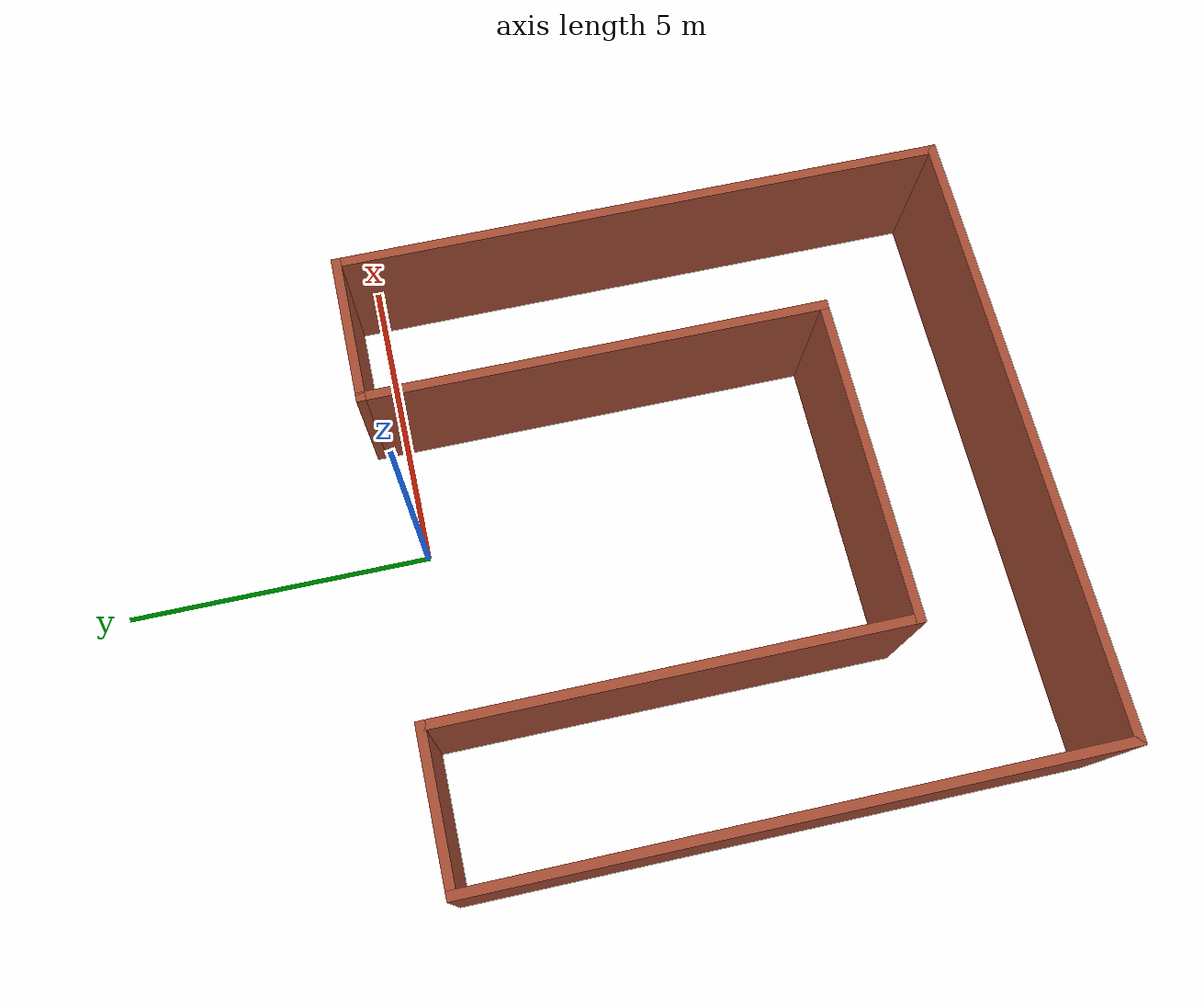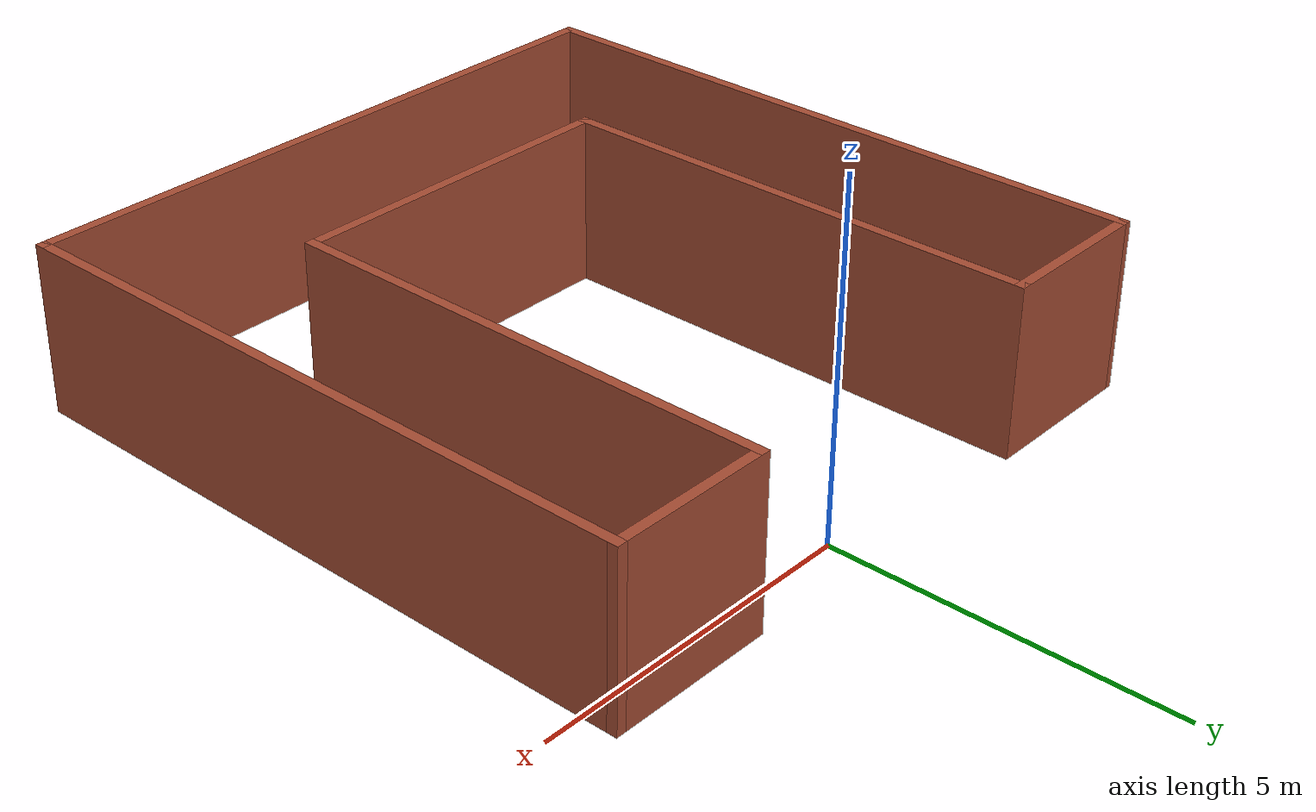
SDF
<?xml version='1.0'?>
<sdf version='1.6'>
  <model name='UWorld_SG_Editor'>
    <pose frame=''>-0.575 -4.46678 0 0 -0 0</pose>
    <link name='Wall_0'>
      <collision name='Wall_0_Collision'>
        <geometry>
          <box>
            <size>2.5 0.15 2.5</size>
          </box>
        </geometry>
        <pose frame=''>0 0 1.25 0 -0 0</pose>
      </collision>
      <visual name='Wall_0_Visual'>
        <pose frame=''>0 0 1.25 0 -0 0</pose>
        <geometry>
          <box>
            <size>2.5 0.15 2.5</size>
          </box>
        </geometry>
        <material>
          <script>
            <uri>file://media/materials/scripts/gazebo.material</uri>
            <name>Gazebo/Bricks</name>
          </script>
          <ambient>1 0.764706 0.305882 1</ambient>
        </material>
        <meta>
          <layer>0</layer>
        </meta>
      </visual>
      <pose frame=''>-3.74979 4.92499 0 0 -0 0.000182</pose>
    </link>
    <link name='Wall_11'>
      <collision name='Wall_11_Collision'>
        <geometry>
          <box>
            <size>7.5 0.15 2.5</size>
          </box>
        </geometry>
        <pose frame=''>0 0 1.25 0 -0 0</pose>
      </collision>
      <visual name='Wall_11_Visual'>
        <pose frame=''>0 0 1.25 0 -0 0</pose>
        <geometry>
          <box>
            <size>7.5 0.15 2.5</size>
          </box>
        </geometry>
        <material>
          <script>
            <uri>file://media/materials/scripts/gazebo.material</uri>
            <name>Gazebo/Bricks</name>
          </script>
          <ambient>1 0.764706 0.305882 1</ambient>
        </material>
        <meta>
          <layer>0</layer>
        </meta>
      </visual>
      <pose frame=''>-2.57479 1.24999 0 0 0 -1.57085</pose>
    </link>
    <link name='Wall_13'>
      <collision name='Wall_13_Collision'>
        <geometry>
          <box>
            <size>10 0.15 2.5</size>
          </box>
        </geometry>
        <pose frame=''>0 0 1.25 0 -0 0</pose>
      </collision>
      <visual name='Wall_13_Visual'>
        <pose frame=''>0 0 1.25 0 -0 0</pose>
        <geometry>
          <box>
            <size>10 0.15 2.5</size>
          </box>
        </geometry>
        <material>
          <script>
            <uri>file://media/materials/scripts/gazebo.material</uri>
            <name>Gazebo/Bricks</name>
          </script>
          <ambient>1 0.764706 0.305882 1</ambient>
        </material>
        <meta>
          <layer>0</layer>
        </meta>
      </visual>
      <pose frame=''>0 -4.92522 0 0 -0 0</pose>
    </link>
    <link name='Wall_15'>
      <collision name='Wall_15_Collision'>
        <geometry>
          <box>
            <size>10 0.15 2.5</size>
          </box>
        </geometry>
        <pose frame=''>0 0 1.25 0 -0 0</pose>
      </collision>
      <visual name='Wall_15_Visual'>
        <pose frame=''>0 0 1.25 0 -0 0</pose>
        <geometry>
          <box>
            <size>10 0.15 2.5</size>
          </box>
        </geometry>
        <material>
          <script>
            <uri>file://media/materials/scripts/gazebo.material</uri>
            <name>Gazebo/Bricks</name>
          </script>
          <ambient>1 0.764706 0.305882 1</ambient>
        </material>
        <meta>
          <layer>0</layer>
        </meta>
      </visual>
      <pose frame=''>4.925 -0.00022 0 0 -0 1.5708</pose>
    </link>
    <link name='Wall_17'>
      <collision name='Wall_17_Collision'>
        <geometry>
          <box>
            <size>2.5 0.15 2.5</size>
          </box>
        </geometry>
        <pose frame=''>0 0 1.25 0 -0 0</pose>
      </collision>
      <visual name='Wall_17_Visual'>
        <pose frame=''>0 0 1.25 0 -0 0</pose>
        <geometry>
          <box>
            <size>2.5 0.15 2.5</size>
          </box>
        </geometry>
        <material>
          <script>
            <uri>file://media/materials/scripts/gazebo.material</uri>
            <name>Gazebo/Bricks</name>
          </script>
          <ambient>1 0.764706 0.305882 1</ambient>
        </material>
        <meta>
          <layer>0</layer>
        </meta>
      </visual>
      <pose frame=''>3.75 4.92478 0 0 -0 3.14159</pose>
    </link>
    <link name='Wall_19'>
      <collision name='Wall_19_Collision'>
        <geometry>
          <box>
            <size>7.5 0.15 2.5</size>
          </box>
        </geometry>
        <pose frame=''>0 0 1.25 0 -0 0</pose>
      </collision>
      <visual name='Wall_19_Visual'>
        <pose frame=''>0 0 1.25 0 -0 0</pose>
        <geometry>
          <box>
            <size>7.5 0.15 2.5</size>
          </box>
        </geometry>
        <material>
          <script>
            <uri>file://media/materials/scripts/gazebo.material</uri>
            <name>Gazebo/Bricks</name>
          </script>
          <ambient>1 0.764706 0.305882 1</ambient>
        </material>
        <meta>
          <layer>0</layer>
        </meta>
      </visual>
      <pose frame=''>2.575 1.24978 0 0 0 -1.5708</pose>
    </link>
    <link name='Wall_21'>
      <collision name='Wall_21_Collision'>
        <geometry>
          <box>
            <size>5.29957 0.15 2.5</size>
          </box>
        </geometry>
        <pose frame=''>0 0 1.25 0 -0 0</pose>
      </collision>
      <visual name='Wall_21_Visual'>
        <pose frame=''>0 0 1.25 0 -0 0</pose>
        <geometry>
          <box>
            <size>5.29957 0.15 2.5</size>
          </box>
        </geometry>
        <material>
          <script>
            <uri>file://media/materials/scripts/gazebo.material</uri>
            <name>Gazebo/Bricks</name>
          </script>
          <ambient>1 0.764706 0.305882 1</ambient>
        </material>
        <meta>
          <layer>0</layer>
        </meta>
      </visual>
      <pose frame=''>0 -2.42522 0 0 -0 0</pose>
    </link>
    <link name='Wall_9'>
      <collision name='Wall_9_Collision'>
        <geometry>
          <box>
            <size>10 0.15 2.5</size>
          </box>
        </geometry>
        <pose frame=''>0 0 1.25 0 -0 0</pose>
      </collision>
      <visual name='Wall_9_Visual'>
        <pose frame=''>0 0 1.25 0 -0 0</pose>
        <geometry>
          <box>
            <size>10 0.15 2.5</size>
          </box>
        </geometry>
        <material>
          <script>
            <uri>file://media/materials/scripts/gazebo.material</uri>
            <name>Gazebo/Bricks</name>
          </script>
          <ambient>1 0.764706 0.305882 1</ambient>
        </material>
        <meta>
          <layer>0</layer>
        </meta>
      </visual>
      <pose frame=''>-4.925 -0.00022 0 0 0 -1.5708</pose>
    </link>
    <static>1</static>
  </model>
</sdf>
